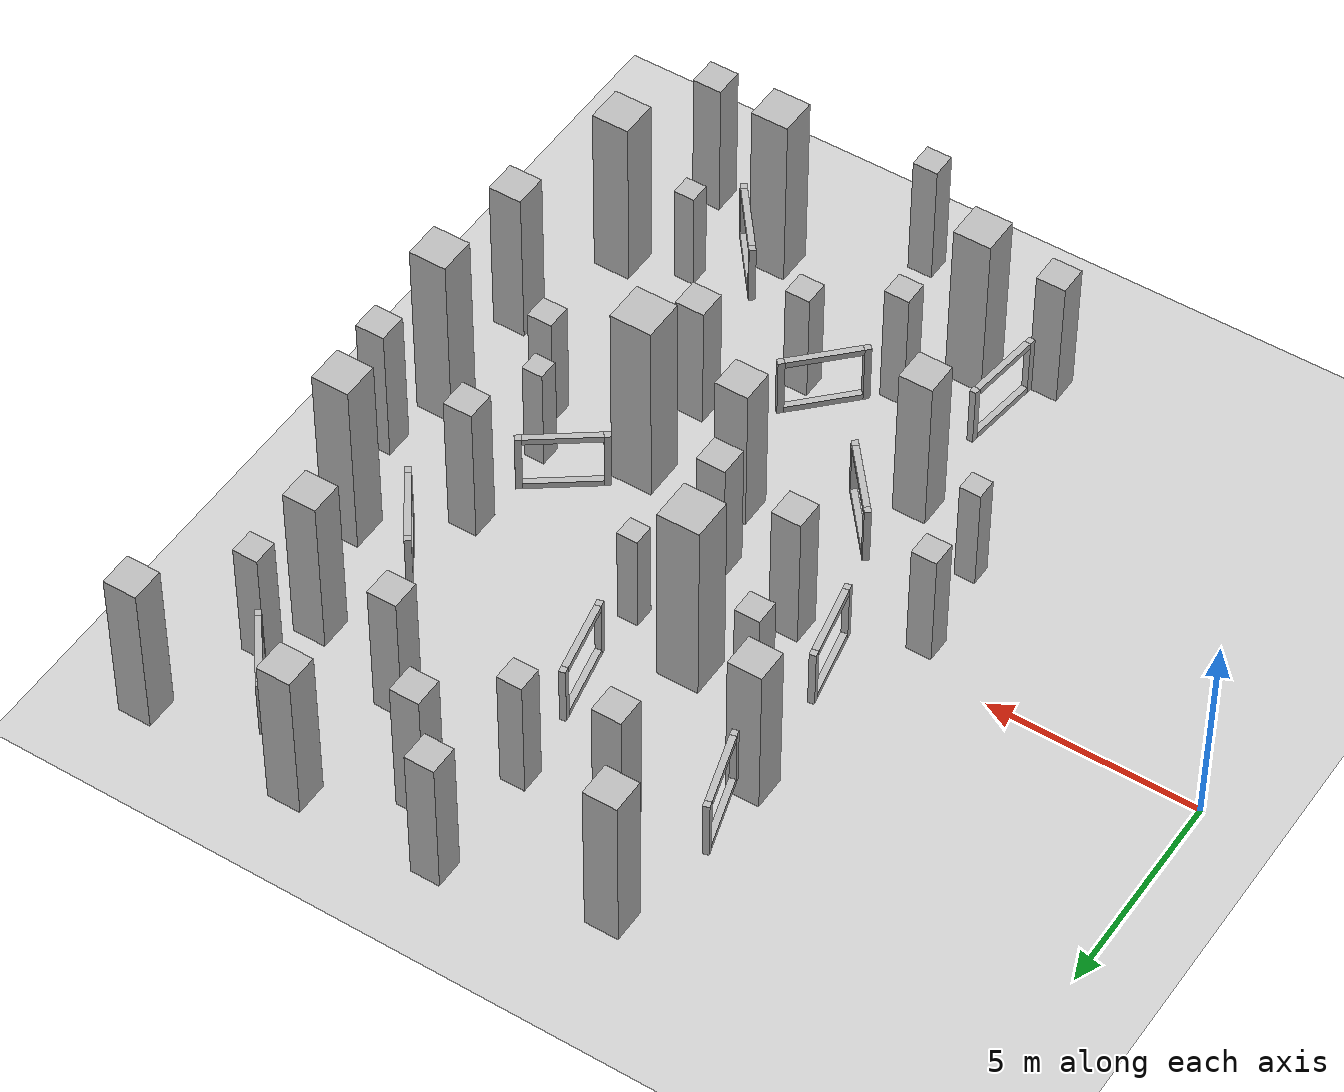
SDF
<sdf version="1.7">
 <world name="default">
  <model name="ground_plane">
   <static>1</static>
   <link name="link">
    <collision name="collision">
     <geometry><plane><normal>0 0 1</normal><size>200 200</size></plane></geometry>
     <surface>
      <contact><collide_bitmask>65535</collide_bitmask></contact>
      <friction><ode><mu>100</mu><mu2>50</mu2></ode></friction>
     </surface>
    </collision>
    <visual name="visual">
     <cast_shadows>0</cast_shadows>
     <geometry><plane><normal>0 0 1</normal><size>200 200</size></plane></geometry>
     <material>
      <script><uri>file://media/materials/scripts/gazebo.material</uri><name>Gazebo/Grey</name></script>
     </material>
    </visual>
   </link>
  </model>
  <model name="box_1">
   <static>true</static>
   <pose>9.435284253947607 0.3607282399853755 1.7976767826360927 0.0 0.0 0.0</pose>
   <link name="link">
    <visual name="visual"><geometry><box><size>0.7 0.7 3.6</size></box></geometry></visual>
    <collision name="collision"><geometry><box><size>0.7 0.7 3.6</size></box></geometry></collision>
   </link>
  </model>
  <model name="box_2">
   <static>true</static>
   <pose>15.050706208265098 6.475188651410427 1.7665011685202259 0.0 0.0 0.0</pose>
   <link name="link">
    <visual name="visual"><geometry><box><size>0.7 0.7 3.5</size></box></geometry></visual>
    <collision name="collision"><geometry><box><size>0.7 0.7 3.5</size></box></geometry></collision>
   </link>
  </model>
  <model name="box_6">
   <static>true</static>
   <pose>8.385144246768085 -8.35082893376583 1.717260542625441 0.0 0.0 0.0</pose>
   <link name="link">
    <visual name="visual"><geometry><box><size>0.7 0.7 3.4</size></box></geometry></visual>
    <collision name="collision"><geometry><box><size>0.7 0.7 3.4</size></box></geometry></collision>
   </link>
  </model>
  <model name="box_8">
   <static>true</static>
   <pose>15.410563189494866 9.53106040815356 2.01878004290297 0.0 0.0 0.0</pose>
   <link name="link">
    <visual name="visual"><geometry><box><size>0.8 0.8 4.0</size></box></geometry></visual>
    <collision name="collision"><geometry><box><size>0.8 0.8 4.0</size></box></geometry></collision>
   </link>
  </model>
  <model name="box_9">
   <static>true</static>
   <pose>9.675347501960367 6.518665783383671 1.75519581834091 0.0 0.0 0.0</pose>
   <link name="link">
    <visual name="visual"><geometry><box><size>0.7 0.7 3.5</size></box></geometry></visual>
    <collision name="collision"><geometry><box><size>0.7 0.7 3.5</size></box></geometry></collision>
   </link>
  </model>
  <model name="box_10">
   <static>true</static>
   <pose>16.99175059820785 -1.897950852720168 1.49083184343902 0.0 0.0 0.0</pose>
   <link name="link">
    <visual name="visual"><geometry><box><size>0.6 0.6 3.0</size></box></geometry></visual>
    <collision name="collision"><geometry><box><size>0.6 0.6 3.0</size></box></geometry></collision>
   </link>
  </model>
  <model name="box_14">
   <static>true</static>
   <pose>11.001397132254333 -6.4118730892092195 1.5954380742907985 0.0 0.0 0.0</pose>
   <link name="link">
    <visual name="visual"><geometry><box><size>0.6 0.6 3.2</size></box></geometry></visual>
    <collision name="collision"><geometry><box><size>0.6 0.6 3.2</size></box></geometry></collision>
   </link>
  </model>
  <model name="box_15">
   <static>true</static>
   <pose>17.535704266663373 5.720117176239265 2.0851721685336777 0.0 0.0 0.0</pose>
   <link name="link">
    <visual name="visual"><geometry><box><size>0.8 0.8 4.2</size></box></geometry></visual>
    <collision name="collision"><geometry><box><size>0.8 0.8 4.2</size></box></geometry></collision>
   </link>
  </model>
  <model name="box_20">
   <static>true</static>
   <pose>19.267255549500028 9.373321606308881 1.9838430262510158 0.0 0.0 0.0</pose>
   <link name="link">
    <visual name="visual"><geometry><box><size>0.8 0.8 4.0</size></box></geometry></visual>
    <collision name="collision"><geometry><box><size>0.8 0.8 4.0</size></box></geometry></collision>
   </link>
  </model>
  <model name="box_23">
   <static>true</static>
   <pose>18.5773206442803 3.1205564822901906 2.3535309444533814 0.0 0.0 0.0</pose>
   <link name="link">
    <visual name="visual"><geometry><box><size>0.9 0.9 4.7</size></box></geometry></visual>
    <collision name="collision"><geometry><box><size>0.9 0.9 4.7</size></box></geometry></collision>
   </link>
  </model>
  <model name="box_29">
   <static>true</static>
   <pose>16.438087854166817 -0.7508817759170032 1.3565845273338146 0.0 0.0 0.0</pose>
   <link name="link">
    <visual name="visual"><geometry><box><size>0.5 0.5 2.7</size></box></geometry></visual>
    <collision name="collision"><geometry><box><size>0.5 0.5 2.7</size></box></geometry></collision>
   </link>
  </model>
  <model name="box_33">
   <static>true</static>
   <pose>8.976244354305845 -3.888254920556104 2.04434748982399 0.0 0.0 0.0</pose>
   <link name="link">
    <visual name="visual"><geometry><box><size>0.8 0.8 4.1</size></box></geometry></visual>
    <collision name="collision"><geometry><box><size>0.8 0.8 4.1</size></box></geometry></collision>
   </link>
  </model>
  <model name="box_37">
   <static>true</static>
   <pose>7.098655124893721 -2.8881180762465135 1.3609228494931693 0.0 0.0 0.0</pose>
   <link name="link">
    <visual name="visual"><geometry><box><size>0.5 0.5 2.7</size></box></geometry></visual>
    <collision name="collision"><geometry><box><size>0.5 0.5 2.7</size></box></geometry></collision>
   </link>
  </model>
  <model name="box_43">
   <static>true</static>
   <pose>17.526732779220453 -9.22684845062541 1.817390292315322 0.0 0.0 0.0</pose>
   <link name="link">
    <visual name="visual"><geometry><box><size>0.7 0.7 3.6</size></box></geometry></visual>
    <collision name="collision"><geometry><box><size>0.7 0.7 3.6</size></box></geometry></collision>
   </link>
  </model>
  <model name="box_44">
   <static>true</static>
   <pose>10.558222716530867 2.4618016477367206 2.4293268097876597 0.0 0.0 0.0</pose>
   <link name="link">
    <visual name="visual"><geometry><box><size>1.0 1.0 4.9</size></box></geometry></visual>
    <collision name="collision"><geometry><box><size>1.0 1.0 4.9</size></box></geometry></collision>
   </link>
  </model>
  <model name="box_46">
   <static>true</static>
   <pose>13.205799517494505 8.317801276837287 1.785955953052779 0.0 0.0 0.0</pose>
   <link name="link">
    <visual name="visual"><geometry><box><size>0.7 0.7 3.6</size></box></geometry></visual>
    <collision name="collision"><geometry><box><size>0.7 0.7 3.6</size></box></geometry></collision>
   </link>
  </model>
  <model name="box_53">
   <static>true</static>
   <pose>8.359495199088862 8.660598591557179 2.0495216352837318 0.0 0.0 0.0</pose>
   <link name="link">
    <visual name="visual"><geometry><box><size>0.8 0.8 4.1</size></box></geometry></visual>
    <collision name="collision"><geometry><box><size>0.8 0.8 4.1</size></box></geometry></collision>
   </link>
  </model>
  <model name="box_54">
   <static>true</static>
   <pose>16.6010224488724 1.5919018879186275 1.8308425893248128 0.0 0.0 0.0</pose>
   <link name="link">
    <visual name="visual"><geometry><box><size>0.7 0.7 3.7</size></box></geometry></visual>
    <collision name="collision"><geometry><box><size>0.7 0.7 3.7</size></box></geometry></collision>
   </link>
  </model>
  <model name="box_56">
   <static>true</static>
   <pose>12.097720196171927 -1.7914208130189824 1.9687893547800224 0.0 0.0 0.0</pose>
   <link name="link">
    <visual name="visual"><geometry><box><size>0.8 0.8 3.9</size></box></geometry></visual>
    <collision name="collision"><geometry><box><size>0.8 0.8 3.9</size></box></geometry></collision>
   </link>
  </model>
  <model name="box_57">
   <static>true</static>
   <pose>19.42379630001276 0.7145464107841999 1.7798561709640297 0.0 0.0 0.0</pose>
   <link name="link">
    <visual name="visual"><geometry><box><size>0.7 0.7 3.6</size></box></geometry></visual>
    <collision name="collision"><geometry><box><size>0.7 0.7 3.6</size></box></geometry></collision>
   </link>
  </model>
  <model name="box_58">
   <static>true</static>
   <pose>14.383747606127933 -3.6944597925401386 1.6610344660559173 0.0 0.0 0.0</pose>
   <link name="link">
    <visual name="visual"><geometry><box><size>0.7 0.7 3.3</size></box></geometry></visual>
    <collision name="collision"><geometry><box><size>0.7 0.7 3.3</size></box></geometry></collision>
   </link>
  </model>
  <model name="box_60">
   <static>true</static>
   <pose>11.884465854400368 6.69021335209451 1.5761862799217907 0.0 0.0 0.0</pose>
   <link name="link">
    <visual name="visual"><geometry><box><size>0.6 0.6 3.2</size></box></geometry></visual>
    <collision name="collision"><geometry><box><size>0.6 0.6 3.2</size></box></geometry></collision>
   </link>
  </model>
  <model name="box_66">
   <static>true</static>
   <pose>9.027042710524803 2.4890467931223803 1.467444593551424 0.0 0.0 0.0</pose>
   <link name="link">
    <visual name="visual"><geometry><box><size>0.6 0.6 2.9</size></box></geometry></visual>
    <collision name="collision"><geometry><box><size>0.6 0.6 2.9</size></box></geometry></collision>
   </link>
  </model>
  <model name="box_67">
   <static>true</static>
   <pose>7.843491157724166 4.357711136037992 1.9804345137428698 0.0 0.0 0.0</pose>
   <link name="link">
    <visual name="visual"><geometry><box><size>0.8 0.8 4.0</size></box></geometry></visual>
    <collision name="collision"><geometry><box><size>0.8 0.8 4.0</size></box></geometry></collision>
   </link>
  </model>
  <model name="box_70">
   <static>true</static>
   <pose>18.206877821373368 6.8305552880880285 1.5637230157694932 0.0 0.0 0.0</pose>
   <link name="link">
    <visual name="visual"><geometry><box><size>0.6 0.6 3.1</size></box></geometry></visual>
    <collision name="collision"><geometry><box><size>0.6 0.6 3.1</size></box></geometry></collision>
   </link>
  </model>
  <model name="box_72">
   <static>true</static>
   <pose>18.136325512042433 -6.460939760337199 2.2561977414333363 0.0 0.0 0.0</pose>
   <link name="link">
    <visual name="visual"><geometry><box><size>0.9 0.9 4.5</size></box></geometry></visual>
    <collision name="collision"><geometry><box><size>0.9 0.9 4.5</size></box></geometry></collision>
   </link>
  </model>
  <model name="box_73">
   <static>true</static>
   <pose>9.961273315421849 -7.783206143283006 2.2221910999806127 0.0 0.0 0.0</pose>
   <link name="link">
    <visual name="visual"><geometry><box><size>0.9 0.9 4.4</size></box></geometry></visual>
    <collision name="collision"><geometry><box><size>0.9 0.9 4.4</size></box></geometry></collision>
   </link>
  </model>
  <model name="box_80">
   <static>true</static>
   <pose>6.843532994399695 -0.6877165910844063 1.5023619847109217 0.0 0.0 0.0</pose>
   <link name="link">
    <visual name="visual"><geometry><box><size>0.6 0.6 3.0</size></box></geometry></visual>
    <collision name="collision"><geometry><box><size>0.6 0.6 3.0</size></box></geometry></collision>
   </link>
  </model>
  <model name="box_88">
   <static>true</static>
   <pose>19.05058839694678 -3.769337837614999 2.0291746392822967 0.0 0.0 0.0</pose>
   <link name="link">
    <visual name="visual"><geometry><box><size>0.8 0.8 4.1</size></box></geometry></visual>
    <collision name="collision"><geometry><box><size>0.8 0.8 4.1</size></box></geometry></collision>
   </link>
  </model>
  <model name="box_90">
   <static>true</static>
   <pose>12.307226712881842 1.9110844329239285 1.3150893882514465 0.0 0.0 0.0</pose>
   <link name="link">
    <visual name="visual"><geometry><box><size>0.5 0.5 2.6</size></box></geometry></visual>
    <collision name="collision"><geometry><box><size>0.5 0.5 2.6</size></box></geometry></collision>
   </link>
  </model>
  <model name="box_91">
   <static>true</static>
   <pose>16.68647692638497 -6.9322665089644016 1.275047939812869 0.0 0.0 0.0</pose>
   <link name="link">
    <visual name="visual"><geometry><box><size>0.5 0.5 2.6</size></box></geometry></visual>
    <collision name="collision"><geometry><box><size>0.5 0.5 2.6</size></box></geometry></collision>
   </link>
  </model>
  <model name="box_92">
   <static>true</static>
   <pose>12.485886184263201 -9.999313160005844 1.5829685365912014 0.0 0.0 0.0</pose>
   <link name="link">
    <visual name="visual"><geometry><box><size>0.6 0.6 3.2</size></box></geometry></visual>
    <collision name="collision"><geometry><box><size>0.6 0.6 3.2</size></box></geometry></collision>
   </link>
  </model>
  <model name="box_96">
   <static>true</static>
   <pose>12.902238587365325 -5.539154247548814 1.4258456501225658 0.0 0.0 0.0</pose>
   <link name="link">
    <visual name="visual"><geometry><box><size>0.6 0.6 2.9</size></box></geometry></visual>
    <collision name="collision"><geometry><box><size>0.6 0.6 2.9</size></box></geometry></collision>
   </link>
  </model>
  <model name="box_98">
   <static>true</static>
   <pose>11.997067409702211 9.537915986894838 1.7776968133182223 0.0 0.0 0.0</pose>
   <link name="link">
    <visual name="visual"><geometry><box><size>0.7 0.7 3.6</size></box></geometry></visual>
    <collision name="collision"><geometry><box><size>0.7 0.7 3.6</size></box></geometry></collision>
   </link>
  </model>
  <model name="box_106">
   <static>true</static>
   <pose>15.2824096512039 -8.287552592747431 2.3216239031409764 0.0 0.0 0.0</pose>
   <link name="link">
    <visual name="visual"><geometry><box><size>0.9 0.9 4.6</size></box></geometry></visual>
    <collision name="collision"><geometry><box><size>0.9 0.9 4.6</size></box></geometry></collision>
   </link>
  </model>
  <model name="box_107">
   <static>true</static>
   <pose>18.946904406819954 -0.8519945701113159 2.3557731754982623 0.0 0.0 0.0</pose>
   <link name="link">
    <visual name="visual"><geometry><box><size>0.9 0.9 4.7</size></box></geometry></visual>
    <collision name="collision"><geometry><box><size>0.9 0.9 4.7</size></box></geometry></collision>
   </link>
  </model>
  <model name="box_110">
   <static>true</static>
   <pose>14.306777080729262 -1.5035190046172637 2.465253257023835 0.0 0.0 0.0</pose>
   <link name="link">
    <visual name="visual"><geometry><box><size>1.0 1.0 4.9</size></box></geometry></visual>
    <collision name="collision"><geometry><box><size>1.0 1.0 4.9</size></box></geometry></collision>
   </link>
  </model>
  <model name="box_114">
   <static>true</static>
   <pose>11.6307906802753 -0.2534800921681484 1.6552261576452443 0.0 0.0 0.0</pose>
   <link name="link">
    <visual name="visual"><geometry><box><size>0.7 0.7 3.3</size></box></geometry></visual>
    <collision name="collision"><geometry><box><size>0.7 0.7 3.3</size></box></geometry></collision>
   </link>
  </model>
  <model name="block_2">
   <pose>14.773852059564245 -6.225499557061045 2.627484048951386 0.0 0.0 0.66638096026841</pose>
   <static>true</static>
   <link name="right_vertical_edge">
    <pose>0 0.925 0 0 0 0</pose>
    <visual name="right_visual">
     <geometry><box><size>0.15 0.15 1.5</size></box></geometry>
     <material>Gazebo/Blue</material>
    </visual>
    <collision name="right_collision"><geometry><box><size>0.15 0.15 1.5</size></box></geometry></collision>
   </link>
   <link name="left_vertical_edge">
    <pose>0 -0.925 0 0 0 0</pose>
    <visual name="left_visual">
     <geometry><box><size>0.15 0.15 1.5</size></box></geometry>
     <material>Gazebo/Blue</material>
    </visual>
    <collision name="left_collision"><geometry><box><size>0.15 0.15 1.5</size></box></geometry></collision>
   </link>
   <link name="top_horizontal_edge">
    <pose>0 0 0.675 0 0 0</pose>
    <visual name="top_visual">
     <geometry><box><size>0.15 1.7 0.15</size></box></geometry>
     <material>Gazebo/Blue</material>
    </visual>
    <collision name="top_collision"><geometry><box><size>0.15 1.7 0.15</size></box></geometry></collision>
   </link>
   <link name="bottom_horizontal_edge">
    <pose>0 0 -0.675 0 0 0</pose>
    <visual name="bottom_visual">
     <geometry><box><size>0.15 1.7  0.15</size></box></geometry>
     <material>Gazebo/Blue</material>
    </visual>
    <collision name="bottom_collision"><geometry><box><size>0.15 1.7 0.15</size></box></geometry></collision>
   </link>
   <joint name="right-top_joint" type="fixed">
    <parent>right_vertical_edge</parent>
    <child>top_horizontal_edge</child>
    <origin xyz="-0.925 0 0 0 0 0"/>
   </joint>
   <joint name="left-top_joint" type="fixed">
    <parent>left_vertical_edge</parent>
    <child>top_horizontal_edge</child>
    <origin xyz="0.925 0 0 0 0 0"/>
   </joint>
   <joint name="right-bottom_joint" type="fixed">
    <parent>right_vertical_edge</parent>
    <child>bottom_horizontal_edge</child>
    <origin xyz="-0.925 0 0 0 0 0"/>
   </joint>
   <joint name="left-bottom_joint" type="fixed">
    <parent>left_vertical_edge</parent>
    <child>bottom_horizontal_edge</child>
    <origin xyz="0.925 0 0 0 0 0"/>
   </joint>
  </model>
  <model name="block_5">
   <pose>11.297556848800227 5.308570792971572 2.5827666397009663 0.0 0.0 0.19711014912139221</pose>
   <static>true</static>
   <link name="right_vertical_edge">
    <pose>0 0.925 0 0 0 0</pose>
    <visual name="right_visual">
     <geometry><box><size>0.15 0.15 1.5</size></box></geometry>
     <material>Gazebo/Blue</material>
    </visual>
    <collision name="right_collision"><geometry><box><size>0.15 0.15 1.5</size></box></geometry></collision>
   </link>
   <link name="left_vertical_edge">
    <pose>0 -0.925 0 0 0 0</pose>
    <visual name="left_visual">
     <geometry><box><size>0.15 0.15 1.5</size></box></geometry>
     <material>Gazebo/Blue</material>
    </visual>
    <collision name="left_collision"><geometry><box><size>0.15 0.15 1.5</size></box></geometry></collision>
   </link>
   <link name="top_horizontal_edge">
    <pose>0 0 0.675 0 0 0</pose>
    <visual name="top_visual">
     <geometry><box><size>0.15 1.7 0.15</size></box></geometry>
     <material>Gazebo/Blue</material>
    </visual>
    <collision name="top_collision"><geometry><box><size>0.15 1.7 0.15</size></box></geometry></collision>
   </link>
   <link name="bottom_horizontal_edge">
    <pose>0 0 -0.675 0 0 0</pose>
    <visual name="bottom_visual">
     <geometry><box><size>0.15 1.7  0.15</size></box></geometry>
     <material>Gazebo/Blue</material>
    </visual>
    <collision name="bottom_collision"><geometry><box><size>0.15 1.7 0.15</size></box></geometry></collision>
   </link>
   <joint name="right-top_joint" type="fixed">
    <parent>right_vertical_edge</parent>
    <child>top_horizontal_edge</child>
    <origin xyz="-0.925 0 0 0 0 0"/>
   </joint>
   <joint name="left-top_joint" type="fixed">
    <parent>left_vertical_edge</parent>
    <child>top_horizontal_edge</child>
    <origin xyz="0.925 0 0 0 0 0"/>
   </joint>
   <joint name="right-bottom_joint" type="fixed">
    <parent>right_vertical_edge</parent>
    <child>bottom_horizontal_edge</child>
    <origin xyz="-0.925 0 0 0 0 0"/>
   </joint>
   <joint name="left-bottom_joint" type="fixed">
    <parent>left_vertical_edge</parent>
    <child>bottom_horizontal_edge</child>
    <origin xyz="0.925 0 0 0 0 0"/>
   </joint>
  </model>
  <model name="block_9">
   <pose>14.885407747363416 0.6598300251996605 2.0007903980357815 0.0 0.0 -0.9410029532642953</pose>
   <static>true</static>
   <link name="right_vertical_edge">
    <pose>0 0.925 0 0 0 0</pose>
    <visual name="right_visual">
     <geometry><box><size>0.15 0.15 1.5</size></box></geometry>
     <material>Gazebo/Blue</material>
    </visual>
    <collision name="right_collision"><geometry><box><size>0.15 0.15 1.5</size></box></geometry></collision>
   </link>
   <link name="left_vertical_edge">
    <pose>0 -0.925 0 0 0 0</pose>
    <visual name="left_visual">
     <geometry><box><size>0.15 0.15 1.5</size></box></geometry>
     <material>Gazebo/Blue</material>
    </visual>
    <collision name="left_collision"><geometry><box><size>0.15 0.15 1.5</size></box></geometry></collision>
   </link>
   <link name="top_horizontal_edge">
    <pose>0 0 0.675 0 0 0</pose>
    <visual name="top_visual">
     <geometry><box><size>0.15 1.7 0.15</size></box></geometry>
     <material>Gazebo/Blue</material>
    </visual>
    <collision name="top_collision"><geometry><box><size>0.15 1.7 0.15</size></box></geometry></collision>
   </link>
   <link name="bottom_horizontal_edge">
    <pose>0 0 -0.675 0 0 0</pose>
    <visual name="bottom_visual">
     <geometry><box><size>0.15 1.7  0.15</size></box></geometry>
     <material>Gazebo/Blue</material>
    </visual>
    <collision name="bottom_collision"><geometry><box><size>0.15 1.7 0.15</size></box></geometry></collision>
   </link>
   <joint name="right-top_joint" type="fixed">
    <parent>right_vertical_edge</parent>
    <child>top_horizontal_edge</child>
    <origin xyz="-0.925 0 0 0 0 0"/>
   </joint>
   <joint name="left-top_joint" type="fixed">
    <parent>left_vertical_edge</parent>
    <child>top_horizontal_edge</child>
    <origin xyz="0.925 0 0 0 0 0"/>
   </joint>
   <joint name="right-bottom_joint" type="fixed">
    <parent>right_vertical_edge</parent>
    <child>bottom_horizontal_edge</child>
    <origin xyz="-0.925 0 0 0 0 0"/>
   </joint>
   <joint name="left-bottom_joint" type="fixed">
    <parent>left_vertical_edge</parent>
    <child>bottom_horizontal_edge</child>
    <origin xyz="0.925 0 0 0 0 0"/>
   </joint>
  </model>
  <model name="block_10">
   <pose>16.95625419426228 8.446751047770395 1.6377024149088952 0.0 0.0 0.6435882699140001</pose>
   <static>true</static>
   <link name="right_vertical_edge">
    <pose>0 0.925 0 0 0 0</pose>
    <visual name="right_visual">
     <geometry><box><size>0.15 0.15 1.5</size></box></geometry>
     <material>Gazebo/Blue</material>
    </visual>
    <collision name="right_collision"><geometry><box><size>0.15 0.15 1.5</size></box></geometry></collision>
   </link>
   <link name="left_vertical_edge">
    <pose>0 -0.925 0 0 0 0</pose>
    <visual name="left_visual">
     <geometry><box><size>0.15 0.15 1.5</size></box></geometry>
     <material>Gazebo/Blue</material>
    </visual>
    <collision name="left_collision"><geometry><box><size>0.15 0.15 1.5</size></box></geometry></collision>
   </link>
   <link name="top_horizontal_edge">
    <pose>0 0 0.675 0 0 0</pose>
    <visual name="top_visual">
     <geometry><box><size>0.15 1.7 0.15</size></box></geometry>
     <material>Gazebo/Blue</material>
    </visual>
    <collision name="top_collision"><geometry><box><size>0.15 1.7 0.15</size></box></geometry></collision>
   </link>
   <link name="bottom_horizontal_edge">
    <pose>0 0 -0.675 0 0 0</pose>
    <visual name="bottom_visual">
     <geometry><box><size>0.15 1.7  0.15</size></box></geometry>
     <material>Gazebo/Blue</material>
    </visual>
    <collision name="bottom_collision"><geometry><box><size>0.15 1.7 0.15</size></box></geometry></collision>
   </link>
   <joint name="right-top_joint" type="fixed">
    <parent>right_vertical_edge</parent>
    <child>top_horizontal_edge</child>
    <origin xyz="-0.925 0 0 0 0 0"/>
   </joint>
   <joint name="left-top_joint" type="fixed">
    <parent>left_vertical_edge</parent>
    <child>top_horizontal_edge</child>
    <origin xyz="0.925 0 0 0 0 0"/>
   </joint>
   <joint name="right-bottom_joint" type="fixed">
    <parent>right_vertical_edge</parent>
    <child>bottom_horizontal_edge</child>
    <origin xyz="-0.925 0 0 0 0 0"/>
   </joint>
   <joint name="left-bottom_joint" type="fixed">
    <parent>left_vertical_edge</parent>
    <child>bottom_horizontal_edge</child>
    <origin xyz="0.925 0 0 0 0 0"/>
   </joint>
  </model>
  <model name="block_12">
   <pose>7.330265478301506 6.380464069278201 2.2654035664541095 0.0 0.0 0.2852681668985515</pose>
   <static>true</static>
   <link name="right_vertical_edge">
    <pose>0 0.925 0 0 0 0</pose>
    <visual name="right_visual">
     <geometry><box><size>0.15 0.15 1.5</size></box></geometry>
     <material>Gazebo/Blue</material>
    </visual>
    <collision name="right_collision"><geometry><box><size>0.15 0.15 1.5</size></box></geometry></collision>
   </link>
   <link name="left_vertical_edge">
    <pose>0 -0.925 0 0 0 0</pose>
    <visual name="left_visual">
     <geometry><box><size>0.15 0.15 1.5</size></box></geometry>
     <material>Gazebo/Blue</material>
    </visual>
    <collision name="left_collision"><geometry><box><size>0.15 0.15 1.5</size></box></geometry></collision>
   </link>
   <link name="top_horizontal_edge">
    <pose>0 0 0.675 0 0 0</pose>
    <visual name="top_visual">
     <geometry><box><size>0.15 1.7 0.15</size></box></geometry>
     <material>Gazebo/Blue</material>
    </visual>
    <collision name="top_collision"><geometry><box><size>0.15 1.7 0.15</size></box></geometry></collision>
   </link>
   <link name="bottom_horizontal_edge">
    <pose>0 0 -0.675 0 0 0</pose>
    <visual name="bottom_visual">
     <geometry><box><size>0.15 1.7  0.15</size></box></geometry>
     <material>Gazebo/Blue</material>
    </visual>
    <collision name="bottom_collision"><geometry><box><size>0.15 1.7 0.15</size></box></geometry></collision>
   </link>
   <joint name="right-top_joint" type="fixed">
    <parent>right_vertical_edge</parent>
    <child>top_horizontal_edge</child>
    <origin xyz="-0.925 0 0 0 0 0"/>
   </joint>
   <joint name="left-top_joint" type="fixed">
    <parent>left_vertical_edge</parent>
    <child>top_horizontal_edge</child>
    <origin xyz="0.925 0 0 0 0 0"/>
   </joint>
   <joint name="right-bottom_joint" type="fixed">
    <parent>right_vertical_edge</parent>
    <child>bottom_horizontal_edge</child>
    <origin xyz="-0.925 0 0 0 0 0"/>
   </joint>
   <joint name="left-bottom_joint" type="fixed">
    <parent>left_vertical_edge</parent>
    <child>bottom_horizontal_edge</child>
    <origin xyz="0.925 0 0 0 0 0"/>
   </joint>
  </model>
  <model name="block_20">
   <pose>11.29120959756128 -3.7018419598782515 2.669177032207288 0.0 0.0 -0.7730412480376904</pose>
   <static>true</static>
   <link name="right_vertical_edge">
    <pose>0 0.925 0 0 0 0</pose>
    <visual name="right_visual">
     <geometry><box><size>0.15 0.15 1.5</size></box></geometry>
     <material>Gazebo/Blue</material>
    </visual>
    <collision name="right_collision"><geometry><box><size>0.15 0.15 1.5</size></box></geometry></collision>
   </link>
   <link name="left_vertical_edge">
    <pose>0 -0.925 0 0 0 0</pose>
    <visual name="left_visual">
     <geometry><box><size>0.15 0.15 1.5</size></box></geometry>
     <material>Gazebo/Blue</material>
    </visual>
    <collision name="left_collision"><geometry><box><size>0.15 0.15 1.5</size></box></geometry></collision>
   </link>
   <link name="top_horizontal_edge">
    <pose>0 0 0.675 0 0 0</pose>
    <visual name="top_visual">
     <geometry><box><size>0.15 1.7 0.15</size></box></geometry>
     <material>Gazebo/Blue</material>
    </visual>
    <collision name="top_collision"><geometry><box><size>0.15 1.7 0.15</size></box></geometry></collision>
   </link>
   <link name="bottom_horizontal_edge">
    <pose>0 0 -0.675 0 0 0</pose>
    <visual name="bottom_visual">
     <geometry><box><size>0.15 1.7  0.15</size></box></geometry>
     <material>Gazebo/Blue</material>
    </visual>
    <collision name="bottom_collision"><geometry><box><size>0.15 1.7 0.15</size></box></geometry></collision>
   </link>
   <joint name="right-top_joint" type="fixed">
    <parent>right_vertical_edge</parent>
    <child>top_horizontal_edge</child>
    <origin xyz="-0.925 0 0 0 0 0"/>
   </joint>
   <joint name="left-top_joint" type="fixed">
    <parent>left_vertical_edge</parent>
    <child>top_horizontal_edge</child>
    <origin xyz="0.925 0 0 0 0 0"/>
   </joint>
   <joint name="right-bottom_joint" type="fixed">
    <parent>right_vertical_edge</parent>
    <child>bottom_horizontal_edge</child>
    <origin xyz="-0.925 0 0 0 0 0"/>
   </joint>
   <joint name="left-bottom_joint" type="fixed">
    <parent>left_vertical_edge</parent>
    <child>bottom_horizontal_edge</child>
    <origin xyz="0.925 0 0 0 0 0"/>
   </joint>
  </model>
  <model name="block_23">
   <pose>7.46869175689779 2.148058713047714 2.4495141358949337 0.0 0.0 0.19205109641291945</pose>
   <static>true</static>
   <link name="right_vertical_edge">
    <pose>0 0.925 0 0 0 0</pose>
    <visual name="right_visual">
     <geometry><box><size>0.15 0.15 1.5</size></box></geometry>
     <material>Gazebo/Blue</material>
    </visual>
    <collision name="right_collision"><geometry><box><size>0.15 0.15 1.5</size></box></geometry></collision>
   </link>
   <link name="left_vertical_edge">
    <pose>0 -0.925 0 0 0 0</pose>
    <visual name="left_visual">
     <geometry><box><size>0.15 0.15 1.5</size></box></geometry>
     <material>Gazebo/Blue</material>
    </visual>
    <collision name="left_collision"><geometry><box><size>0.15 0.15 1.5</size></box></geometry></collision>
   </link>
   <link name="top_horizontal_edge">
    <pose>0 0 0.675 0 0 0</pose>
    <visual name="top_visual">
     <geometry><box><size>0.15 1.7 0.15</size></box></geometry>
     <material>Gazebo/Blue</material>
    </visual>
    <collision name="top_collision"><geometry><box><size>0.15 1.7 0.15</size></box></geometry></collision>
   </link>
   <link name="bottom_horizontal_edge">
    <pose>0 0 -0.675 0 0 0</pose>
    <visual name="bottom_visual">
     <geometry><box><size>0.15 1.7  0.15</size></box></geometry>
     <material>Gazebo/Blue</material>
    </visual>
    <collision name="bottom_collision"><geometry><box><size>0.15 1.7 0.15</size></box></geometry></collision>
   </link>
   <joint name="right-top_joint" type="fixed">
    <parent>right_vertical_edge</parent>
    <child>top_horizontal_edge</child>
    <origin xyz="-0.925 0 0 0 0 0"/>
   </joint>
   <joint name="left-top_joint" type="fixed">
    <parent>left_vertical_edge</parent>
    <child>top_horizontal_edge</child>
    <origin xyz="0.925 0 0 0 0 0"/>
   </joint>
   <joint name="right-bottom_joint" type="fixed">
    <parent>right_vertical_edge</parent>
    <child>bottom_horizontal_edge</child>
    <origin xyz="-0.925 0 0 0 0 0"/>
   </joint>
   <joint name="left-bottom_joint" type="fixed">
    <parent>left_vertical_edge</parent>
    <child>bottom_horizontal_edge</child>
    <origin xyz="0.925 0 0 0 0 0"/>
   </joint>
  </model>
  <model name="block_25">
   <pose>8.201985611110192 -5.754767639823164 2.3138655817115668 0.0 0.0 -0.12696664860893234</pose>
   <static>true</static>
   <link name="right_vertical_edge">
    <pose>0 0.925 0 0 0 0</pose>
    <visual name="right_visual">
     <geometry><box><size>0.15 0.15 1.5</size></box></geometry>
     <material>Gazebo/Blue</material>
    </visual>
    <collision name="right_collision"><geometry><box><size>0.15 0.15 1.5</size></box></geometry></collision>
   </link>
   <link name="left_vertical_edge">
    <pose>0 -0.925 0 0 0 0</pose>
    <visual name="left_visual">
     <geometry><box><size>0.15 0.15 1.5</size></box></geometry>
     <material>Gazebo/Blue</material>
    </visual>
    <collision name="left_collision"><geometry><box><size>0.15 0.15 1.5</size></box></geometry></collision>
   </link>
   <link name="top_horizontal_edge">
    <pose>0 0 0.675 0 0 0</pose>
    <visual name="top_visual">
     <geometry><box><size>0.15 1.7 0.15</size></box></geometry>
     <material>Gazebo/Blue</material>
    </visual>
    <collision name="top_collision"><geometry><box><size>0.15 1.7 0.15</size></box></geometry></collision>
   </link>
   <link name="bottom_horizontal_edge">
    <pose>0 0 -0.675 0 0 0</pose>
    <visual name="bottom_visual">
     <geometry><box><size>0.15 1.7  0.15</size></box></geometry>
     <material>Gazebo/Blue</material>
    </visual>
    <collision name="bottom_collision"><geometry><box><size>0.15 1.7 0.15</size></box></geometry></collision>
   </link>
   <joint name="right-top_joint" type="fixed">
    <parent>right_vertical_edge</parent>
    <child>top_horizontal_edge</child>
    <origin xyz="-0.925 0 0 0 0 0"/>
   </joint>
   <joint name="left-top_joint" type="fixed">
    <parent>left_vertical_edge</parent>
    <child>top_horizontal_edge</child>
    <origin xyz="0.925 0 0 0 0 0"/>
   </joint>
   <joint name="right-bottom_joint" type="fixed">
    <parent>right_vertical_edge</parent>
    <child>bottom_horizontal_edge</child>
    <origin xyz="-0.925 0 0 0 0 0"/>
   </joint>
   <joint name="left-bottom_joint" type="fixed">
    <parent>left_vertical_edge</parent>
    <child>bottom_horizontal_edge</child>
    <origin xyz="0.925 0 0 0 0 0"/>
   </joint>
  </model>
  <model name="block_27">
   <pose>16.268906504978325 4.2055741588662965 2.396578108381624 0.0 0.0 0.6098740742012474</pose>
   <static>true</static>
   <link name="right_vertical_edge">
    <pose>0 0.925 0 0 0 0</pose>
    <visual name="right_visual">
     <geometry><box><size>0.15 0.15 1.5</size></box></geometry>
     <material>Gazebo/Blue</material>
    </visual>
    <collision name="right_collision"><geometry><box><size>0.15 0.15 1.5</size></box></geometry></collision>
   </link>
   <link name="left_vertical_edge">
    <pose>0 -0.925 0 0 0 0</pose>
    <visual name="left_visual">
     <geometry><box><size>0.15 0.15 1.5</size></box></geometry>
     <material>Gazebo/Blue</material>
    </visual>
    <collision name="left_collision"><geometry><box><size>0.15 0.15 1.5</size></box></geometry></collision>
   </link>
   <link name="top_horizontal_edge">
    <pose>0 0 0.675 0 0 0</pose>
    <visual name="top_visual">
     <geometry><box><size>0.15 1.7 0.15</size></box></geometry>
     <material>Gazebo/Blue</material>
    </visual>
    <collision name="top_collision"><geometry><box><size>0.15 1.7 0.15</size></box></geometry></collision>
   </link>
   <link name="bottom_horizontal_edge">
    <pose>0 0 -0.675 0 0 0</pose>
    <visual name="bottom_visual">
     <geometry><box><size>0.15 1.7  0.15</size></box></geometry>
     <material>Gazebo/Blue</material>
    </visual>
    <collision name="bottom_collision"><geometry><box><size>0.15 1.7 0.15</size></box></geometry></collision>
   </link>
   <joint name="right-top_joint" type="fixed">
    <parent>right_vertical_edge</parent>
    <child>top_horizontal_edge</child>
    <origin xyz="-0.925 0 0 0 0 0"/>
   </joint>
   <joint name="left-top_joint" type="fixed">
    <parent>left_vertical_edge</parent>
    <child>top_horizontal_edge</child>
    <origin xyz="0.925 0 0 0 0 0"/>
   </joint>
   <joint name="right-bottom_joint" type="fixed">
    <parent>right_vertical_edge</parent>
    <child>bottom_horizontal_edge</child>
    <origin xyz="-0.925 0 0 0 0 0"/>
   </joint>
   <joint name="left-bottom_joint" type="fixed">
    <parent>left_vertical_edge</parent>
    <child>bottom_horizontal_edge</child>
    <origin xyz="0.925 0 0 0 0 0"/>
   </joint>
  </model>
  <model name="block_28">
   <pose>9.261049022641462 -1.9259257078845486 1.8019956793051461 0.0 0.0 0.6908670081374471</pose>
   <static>true</static>
   <link name="right_vertical_edge">
    <pose>0 0.925 0 0 0 0</pose>
    <visual name="right_visual">
     <geometry><box><size>0.15 0.15 1.5</size></box></geometry>
     <material>Gazebo/Blue</material>
    </visual>
    <collision name="right_collision"><geometry><box><size>0.15 0.15 1.5</size></box></geometry></collision>
   </link>
   <link name="left_vertical_edge">
    <pose>0 -0.925 0 0 0 0</pose>
    <visual name="left_visual">
     <geometry><box><size>0.15 0.15 1.5</size></box></geometry>
     <material>Gazebo/Blue</material>
    </visual>
    <collision name="left_collision"><geometry><box><size>0.15 0.15 1.5</size></box></geometry></collision>
   </link>
   <link name="top_horizontal_edge">
    <pose>0 0 0.675 0 0 0</pose>
    <visual name="top_visual">
     <geometry><box><size>0.15 1.7 0.15</size></box></geometry>
     <material>Gazebo/Blue</material>
    </visual>
    <collision name="top_collision"><geometry><box><size>0.15 1.7 0.15</size></box></geometry></collision>
   </link>
   <link name="bottom_horizontal_edge">
    <pose>0 0 -0.675 0 0 0</pose>
    <visual name="bottom_visual">
     <geometry><box><size>0.15 1.7  0.15</size></box></geometry>
     <material>Gazebo/Blue</material>
    </visual>
    <collision name="bottom_collision"><geometry><box><size>0.15 1.7 0.15</size></box></geometry></collision>
   </link>
   <joint name="right-top_joint" type="fixed">
    <parent>right_vertical_edge</parent>
    <child>top_horizontal_edge</child>
    <origin xyz="-0.925 0 0 0 0 0"/>
   </joint>
   <joint name="left-top_joint" type="fixed">
    <parent>left_vertical_edge</parent>
    <child>top_horizontal_edge</child>
    <origin xyz="0.925 0 0 0 0 0"/>
   </joint>
   <joint name="right-bottom_joint" type="fixed">
    <parent>right_vertical_edge</parent>
    <child>bottom_horizontal_edge</child>
    <origin xyz="-0.925 0 0 0 0 0"/>
   </joint>
   <joint name="left-bottom_joint" type="fixed">
    <parent>left_vertical_edge</parent>
    <child>bottom_horizontal_edge</child>
    <origin xyz="0.925 0 0 0 0 0"/>
   </joint>
  </model>
 </world>
</sdf>
